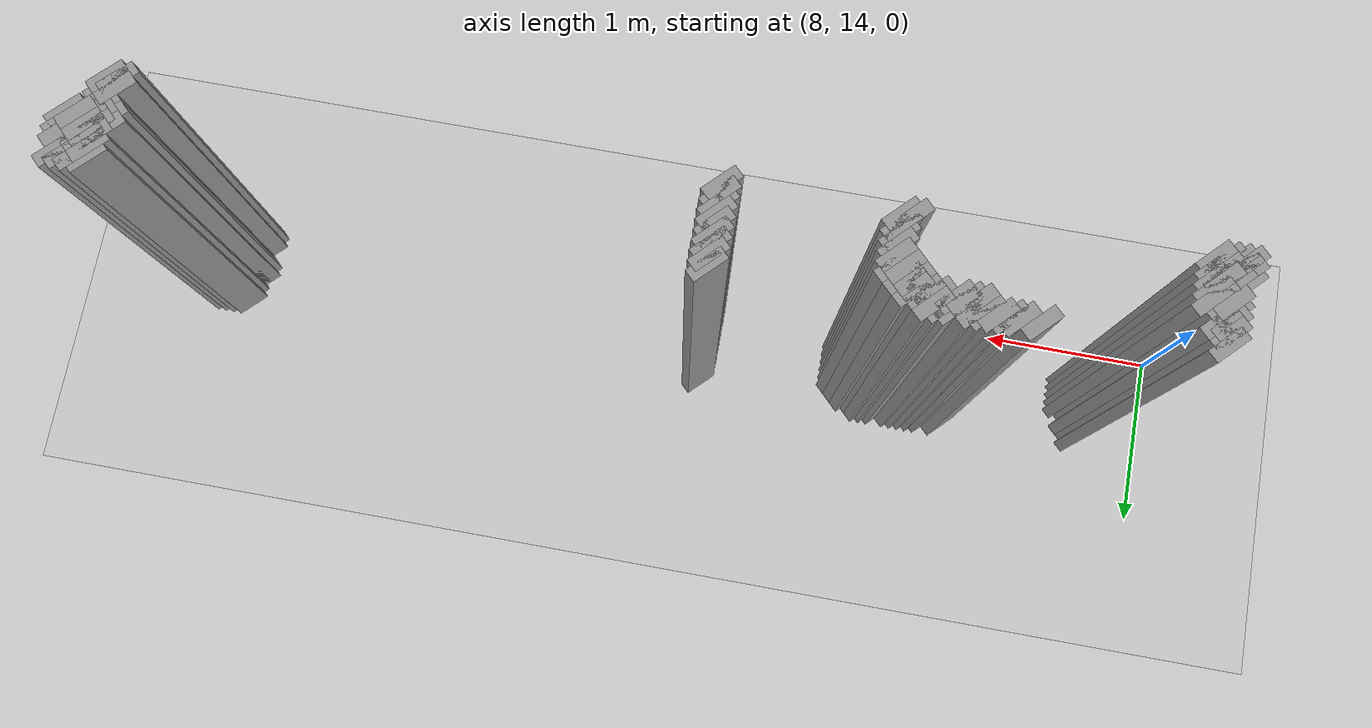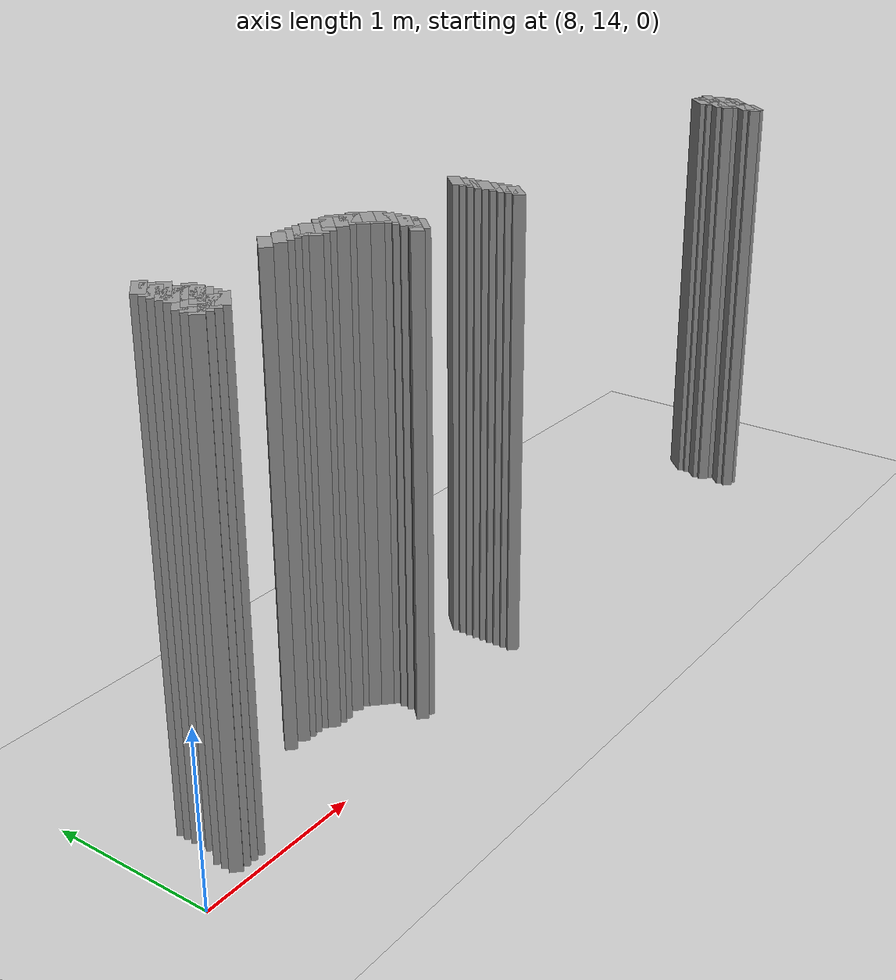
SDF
<sdf version="1.5">
 <world name="default">
  <include><uri>model://ground_plane</uri></include>
  <include><uri>model://sun</uri></include>
  <model name="grey_wall_623">
   <static>1</static>
   <link name="link">
    <pose>9.25 14.6  1.4 0 0 -0.785398163397</pose>
    <collision name="collision"><geometry><box><size>0.0707106781187 .2  2.8</size></box></geometry></collision>
    <visual name="visual">
     <cast_shadows>0</cast_shadows>
     <geometry><box><size>0.0707106781187 .2  2.8</size></box></geometry>
     <material>
      <script>
       <uri>model://grey_wall/materials/scripts</uri>
       <uri>model://grey_wall/materials/textures</uri>
       <name>vrc/grey_wall</name>
      </script>
     </material>
    </visual>
   </link>
  </model>
  <model name="grey_wall_624">
   <static>1</static>
   <link name="link">
    <pose>9.35 14.6  1.4 0 0 -0.785398163397</pose>
    <collision name="collision"><geometry><box><size>0.0707106781187 .2  2.8</size></box></geometry></collision>
    <visual name="visual">
     <cast_shadows>0</cast_shadows>
     <geometry><box><size>0.0707106781187 .2  2.8</size></box></geometry>
     <material>
      <script>
       <uri>model://grey_wall/materials/scripts</uri>
       <uri>model://grey_wall/materials/textures</uri>
       <name>vrc/grey_wall</name>
      </script>
     </material>
    </visual>
   </link>
  </model>
  <model name="grey_wall_625">
   <static>1</static>
   <link name="link">
    <pose>9.4 14.6  1.4 0 0 -0.785398163397</pose>
    <collision name="collision"><geometry><box><size>0.0707106781187 .2  2.8</size></box></geometry></collision>
    <visual name="visual">
     <cast_shadows>0</cast_shadows>
     <geometry><box><size>0.0707106781187 .2  2.8</size></box></geometry>
     <material>
      <script>
       <uri>model://grey_wall/materials/scripts</uri>
       <uri>model://grey_wall/materials/textures</uri>
       <name>vrc/grey_wall</name>
      </script>
     </material>
    </visual>
   </link>
  </model>
  <model name="grey_wall_626">
   <static>1</static>
   <link name="link">
    <pose>9.45 14.6  1.4 0 0 -0.785398163397</pose>
    <collision name="collision"><geometry><box><size>0.0707106781187 .2  2.8</size></box></geometry></collision>
    <visual name="visual">
     <cast_shadows>0</cast_shadows>
     <geometry><box><size>0.0707106781187 .2  2.8</size></box></geometry>
     <material>
      <script>
       <uri>model://grey_wall/materials/scripts</uri>
       <uri>model://grey_wall/materials/textures</uri>
       <name>vrc/grey_wall</name>
      </script>
     </material>
    </visual>
   </link>
  </model>
  <model name="grey_wall_627">
   <static>1</static>
   <link name="link">
    <pose>9.5 14.6  1.4 0 0 -0.785398163397</pose>
    <collision name="collision"><geometry><box><size>0.0707106781187 .2  2.8</size></box></geometry></collision>
    <visual name="visual">
     <cast_shadows>0</cast_shadows>
     <geometry><box><size>0.0707106781187 .2  2.8</size></box></geometry>
     <material>
      <script>
       <uri>model://grey_wall/materials/scripts</uri>
       <uri>model://grey_wall/materials/textures</uri>
       <name>vrc/grey_wall</name>
      </script>
     </material>
    </visual>
   </link>
  </model>
  <model name="grey_wall_628">
   <static>1</static>
   <link name="link">
    <pose>9.55 14.6  1.4 0 0 -0.785398163397</pose>
    <collision name="collision"><geometry><box><size>0.0707106781187 .2  2.8</size></box></geometry></collision>
    <visual name="visual">
     <cast_shadows>0</cast_shadows>
     <geometry><box><size>0.0707106781187 .2  2.8</size></box></geometry>
     <material>
      <script>
       <uri>model://grey_wall/materials/scripts</uri>
       <uri>model://grey_wall/materials/textures</uri>
       <name>vrc/grey_wall</name>
      </script>
     </material>
    </visual>
   </link>
  </model>
  <model name="grey_wall_629">
   <static>1</static>
   <link name="link">
    <pose>9.65 14.6  1.4 0 0 -0.785398163397</pose>
    <collision name="collision"><geometry><box><size>0.0707106781187 .2  2.8</size></box></geometry></collision>
    <visual name="visual">
     <cast_shadows>0</cast_shadows>
     <geometry><box><size>0.0707106781187 .2  2.8</size></box></geometry>
     <material>
      <script>
       <uri>model://grey_wall/materials/scripts</uri>
       <uri>model://grey_wall/materials/textures</uri>
       <name>vrc/grey_wall</name>
      </script>
     </material>
    </visual>
   </link>
  </model>
  <model name="grey_wall_630">
   <static>1</static>
   <link name="link">
    <pose>9.7 14.6  1.4 0 0 -0.785398163397</pose>
    <collision name="collision"><geometry><box><size>0.0707106781187 .2  2.8</size></box></geometry></collision>
    <visual name="visual">
     <cast_shadows>0</cast_shadows>
     <geometry><box><size>0.0707106781187 .2  2.8</size></box></geometry>
     <material>
      <script>
       <uri>model://grey_wall/materials/scripts</uri>
       <uri>model://grey_wall/materials/textures</uri>
       <name>vrc/grey_wall</name>
      </script>
     </material>
    </visual>
   </link>
  </model>
  <model name="grey_wall_631">
   <static>1</static>
   <link name="link">
    <pose>9.75 14.6  1.4 0 0 -0.785398163397</pose>
    <collision name="collision"><geometry><box><size>0.0707106781187 .2  2.8</size></box></geometry></collision>
    <visual name="visual">
     <cast_shadows>0</cast_shadows>
     <geometry><box><size>0.0707106781187 .2  2.8</size></box></geometry>
     <material>
      <script>
       <uri>model://grey_wall/materials/scripts</uri>
       <uri>model://grey_wall/materials/textures</uri>
       <name>vrc/grey_wall</name>
      </script>
     </material>
    </visual>
   </link>
  </model>
  <model name="grey_wall_632">
   <static>1</static>
   <link name="link">
    <pose>10.8 14.6  1.4 0 0 -0.785398163397</pose>
    <collision name="collision"><geometry><box><size>0.0707106781187 .2  2.8</size></box></geometry></collision>
    <visual name="visual">
     <cast_shadows>0</cast_shadows>
     <geometry><box><size>0.0707106781187 .2  2.8</size></box></geometry>
     <material>
      <script>
       <uri>model://grey_wall/materials/scripts</uri>
       <uri>model://grey_wall/materials/textures</uri>
       <name>vrc/grey_wall</name>
      </script>
     </material>
    </visual>
   </link>
  </model>
  <model name="grey_wall_633">
   <static>1</static>
   <link name="link">
    <pose>13.75 14.6  1.4 0 0 -0.785398163397</pose>
    <collision name="collision"><geometry><box><size>0.0707106781187 .2  2.8</size></box></geometry></collision>
    <visual name="visual">
     <cast_shadows>0</cast_shadows>
     <geometry><box><size>0.0707106781187 .2  2.8</size></box></geometry>
     <material>
      <script>
       <uri>model://grey_wall/materials/scripts</uri>
       <uri>model://grey_wall/materials/textures</uri>
       <name>vrc/grey_wall</name>
      </script>
     </material>
    </visual>
   </link>
  </model>
  <model name="grey_wall_634">
   <static>1</static>
   <link name="link">
    <pose>13.8 14.6  1.4 0 0 -0.785398163397</pose>
    <collision name="collision"><geometry><box><size>0.0707106781187 .2  2.8</size></box></geometry></collision>
    <visual name="visual">
     <cast_shadows>0</cast_shadows>
     <geometry><box><size>0.0707106781187 .2  2.8</size></box></geometry>
     <material>
      <script>
       <uri>model://grey_wall/materials/scripts</uri>
       <uri>model://grey_wall/materials/textures</uri>
       <name>vrc/grey_wall</name>
      </script>
     </material>
    </visual>
   </link>
  </model>
  <model name="grey_wall_635">
   <static>1</static>
   <link name="link">
    <pose>13.85 14.6  1.4 0 0 -0.785398163397</pose>
    <collision name="collision"><geometry><box><size>0.0707106781187 .2  2.8</size></box></geometry></collision>
    <visual name="visual">
     <cast_shadows>0</cast_shadows>
     <geometry><box><size>0.0707106781187 .2  2.8</size></box></geometry>
     <material>
      <script>
       <uri>model://grey_wall/materials/scripts</uri>
       <uri>model://grey_wall/materials/textures</uri>
       <name>vrc/grey_wall</name>
      </script>
     </material>
    </visual>
   </link>
  </model>
  <model name="grey_wall_636">
   <static>1</static>
   <link name="link">
    <pose>13.9 14.6  1.4 0 0 -0.785398163397</pose>
    <collision name="collision"><geometry><box><size>0.0707106781187 .2  2.8</size></box></geometry></collision>
    <visual name="visual">
     <cast_shadows>0</cast_shadows>
     <geometry><box><size>0.0707106781187 .2  2.8</size></box></geometry>
     <material>
      <script>
       <uri>model://grey_wall/materials/scripts</uri>
       <uri>model://grey_wall/materials/textures</uri>
       <name>vrc/grey_wall</name>
      </script>
     </material>
    </visual>
   </link>
  </model>
  <model name="grey_wall_637">
   <static>1</static>
   <link name="link">
    <pose>8.4 14.55  1.4 0 0 -0.785398163397</pose>
    <collision name="collision"><geometry><box><size>0.0707106781187 .2  2.8</size></box></geometry></collision>
    <visual name="visual">
     <cast_shadows>0</cast_shadows>
     <geometry><box><size>0.0707106781187 .2  2.8</size></box></geometry>
     <material>
      <script>
       <uri>model://grey_wall/materials/scripts</uri>
       <uri>model://grey_wall/materials/textures</uri>
       <name>vrc/grey_wall</name>
      </script>
     </material>
    </visual>
   </link>
  </model>
  <model name="grey_wall_638">
   <static>1</static>
   <link name="link">
    <pose>9.55 14.55  1.4 0 0 -0.785398163397</pose>
    <collision name="collision"><geometry><box><size>0.0707106781187 .2  2.8</size></box></geometry></collision>
    <visual name="visual">
     <cast_shadows>0</cast_shadows>
     <geometry><box><size>0.0707106781187 .2  2.8</size></box></geometry>
     <material>
      <script>
       <uri>model://grey_wall/materials/scripts</uri>
       <uri>model://grey_wall/materials/textures</uri>
       <name>vrc/grey_wall</name>
      </script>
     </material>
    </visual>
   </link>
  </model>
  <model name="grey_wall_639">
   <static>1</static>
   <link name="link">
    <pose>9.6 14.55  1.4 0 0 -0.785398163397</pose>
    <collision name="collision"><geometry><box><size>0.0707106781187 .2  2.8</size></box></geometry></collision>
    <visual name="visual">
     <cast_shadows>0</cast_shadows>
     <geometry><box><size>0.0707106781187 .2  2.8</size></box></geometry>
     <material>
      <script>
       <uri>model://grey_wall/materials/scripts</uri>
       <uri>model://grey_wall/materials/textures</uri>
       <name>vrc/grey_wall</name>
      </script>
     </material>
    </visual>
   </link>
  </model>
  <model name="grey_wall_640">
   <static>1</static>
   <link name="link">
    <pose>9.65 14.55  1.4 0 0 -0.785398163397</pose>
    <collision name="collision"><geometry><box><size>0.0707106781187 .2  2.8</size></box></geometry></collision>
    <visual name="visual">
     <cast_shadows>0</cast_shadows>
     <geometry><box><size>0.0707106781187 .2  2.8</size></box></geometry>
     <material>
      <script>
       <uri>model://grey_wall/materials/scripts</uri>
       <uri>model://grey_wall/materials/textures</uri>
       <name>vrc/grey_wall</name>
      </script>
     </material>
    </visual>
   </link>
  </model>
  <model name="grey_wall_641">
   <static>1</static>
   <link name="link">
    <pose>9.75 14.55  1.4 0 0 -0.785398163397</pose>
    <collision name="collision"><geometry><box><size>0.0707106781187 .2  2.8</size></box></geometry></collision>
    <visual name="visual">
     <cast_shadows>0</cast_shadows>
     <geometry><box><size>0.0707106781187 .2  2.8</size></box></geometry>
     <material>
      <script>
       <uri>model://grey_wall/materials/scripts</uri>
       <uri>model://grey_wall/materials/textures</uri>
       <name>vrc/grey_wall</name>
      </script>
     </material>
    </visual>
   </link>
  </model>
  <model name="grey_wall_642">
   <static>1</static>
   <link name="link">
    <pose>9.8 14.55  1.4 0 0 -0.785398163397</pose>
    <collision name="collision"><geometry><box><size>0.0707106781187 .2  2.8</size></box></geometry></collision>
    <visual name="visual">
     <cast_shadows>0</cast_shadows>
     <geometry><box><size>0.0707106781187 .2  2.8</size></box></geometry>
     <material>
      <script>
       <uri>model://grey_wall/materials/scripts</uri>
       <uri>model://grey_wall/materials/textures</uri>
       <name>vrc/grey_wall</name>
      </script>
     </material>
    </visual>
   </link>
  </model>
  <model name="grey_wall_643">
   <static>1</static>
   <link name="link">
    <pose>9.85 14.55  1.4 0 0 -0.785398163397</pose>
    <collision name="collision"><geometry><box><size>0.0707106781187 .2  2.8</size></box></geometry></collision>
    <visual name="visual">
     <cast_shadows>0</cast_shadows>
     <geometry><box><size>0.0707106781187 .2  2.8</size></box></geometry>
     <material>
      <script>
       <uri>model://grey_wall/materials/scripts</uri>
       <uri>model://grey_wall/materials/textures</uri>
       <name>vrc/grey_wall</name>
      </script>
     </material>
    </visual>
   </link>
  </model>
  <model name="grey_wall_644">
   <static>1</static>
   <link name="link">
    <pose>10.8 14.55  1.4 0 0 -0.785398163397</pose>
    <collision name="collision"><geometry><box><size>0.0707106781187 .2  2.8</size></box></geometry></collision>
    <visual name="visual">
     <cast_shadows>0</cast_shadows>
     <geometry><box><size>0.0707106781187 .2  2.8</size></box></geometry>
     <material>
      <script>
       <uri>model://grey_wall/materials/scripts</uri>
       <uri>model://grey_wall/materials/textures</uri>
       <name>vrc/grey_wall</name>
      </script>
     </material>
    </visual>
   </link>
  </model>
  <model name="grey_wall_645">
   <static>1</static>
   <link name="link">
    <pose>13.75 14.55  1.4 0 0 -0.785398163397</pose>
    <collision name="collision"><geometry><box><size>0.0707106781187 .2  2.8</size></box></geometry></collision>
    <visual name="visual">
     <cast_shadows>0</cast_shadows>
     <geometry><box><size>0.0707106781187 .2  2.8</size></box></geometry>
     <material>
      <script>
       <uri>model://grey_wall/materials/scripts</uri>
       <uri>model://grey_wall/materials/textures</uri>
       <name>vrc/grey_wall</name>
      </script>
     </material>
    </visual>
   </link>
  </model>
  <model name="grey_wall_646">
   <static>1</static>
   <link name="link">
    <pose>8.4 14.5  1.4 0 0 -0.785398163397</pose>
    <collision name="collision"><geometry><box><size>0.0707106781187 .2  2.8</size></box></geometry></collision>
    <visual name="visual">
     <cast_shadows>0</cast_shadows>
     <geometry><box><size>0.0707106781187 .2  2.8</size></box></geometry>
     <material>
      <script>
       <uri>model://grey_wall/materials/scripts</uri>
       <uri>model://grey_wall/materials/textures</uri>
       <name>vrc/grey_wall</name>
      </script>
     </material>
    </visual>
   </link>
  </model>
  <model name="grey_wall_647">
   <static>1</static>
   <link name="link">
    <pose>9.85 14.5  1.4 0 0 -0.785398163397</pose>
    <collision name="collision"><geometry><box><size>0.0707106781187 .2  2.8</size></box></geometry></collision>
    <visual name="visual">
     <cast_shadows>0</cast_shadows>
     <geometry><box><size>0.0707106781187 .2  2.8</size></box></geometry>
     <material>
      <script>
       <uri>model://grey_wall/materials/scripts</uri>
       <uri>model://grey_wall/materials/textures</uri>
       <name>vrc/grey_wall</name>
      </script>
     </material>
    </visual>
   </link>
  </model>
  <model name="grey_wall_648">
   <static>1</static>
   <link name="link">
    <pose>9.9 14.5  1.4 0 0 -0.785398163397</pose>
    <collision name="collision"><geometry><box><size>0.0707106781187 .2  2.8</size></box></geometry></collision>
    <visual name="visual">
     <cast_shadows>0</cast_shadows>
     <geometry><box><size>0.0707106781187 .2  2.8</size></box></geometry>
     <material>
      <script>
       <uri>model://grey_wall/materials/scripts</uri>
       <uri>model://grey_wall/materials/textures</uri>
       <name>vrc/grey_wall</name>
      </script>
     </material>
    </visual>
   </link>
  </model>
  <model name="grey_wall_649">
   <static>1</static>
   <link name="link">
    <pose>10.8 14.5  1.4 0 0 -0.785398163397</pose>
    <collision name="collision"><geometry><box><size>0.0707106781187 .2  2.8</size></box></geometry></collision>
    <visual name="visual">
     <cast_shadows>0</cast_shadows>
     <geometry><box><size>0.0707106781187 .2  2.8</size></box></geometry>
     <material>
      <script>
       <uri>model://grey_wall/materials/scripts</uri>
       <uri>model://grey_wall/materials/textures</uri>
       <name>vrc/grey_wall</name>
      </script>
     </material>
    </visual>
   </link>
  </model>
  <model name="grey_wall_650">
   <static>1</static>
   <link name="link">
    <pose>13.75 14.5  1.4 0 0 -0.785398163397</pose>
    <collision name="collision"><geometry><box><size>0.0707106781187 .2  2.8</size></box></geometry></collision>
    <visual name="visual">
     <cast_shadows>0</cast_shadows>
     <geometry><box><size>0.0707106781187 .2  2.8</size></box></geometry>
     <material>
      <script>
       <uri>model://grey_wall/materials/scripts</uri>
       <uri>model://grey_wall/materials/textures</uri>
       <name>vrc/grey_wall</name>
      </script>
     </material>
    </visual>
   </link>
  </model>
  <model name="grey_wall_651">
   <static>1</static>
   <link name="link">
    <pose>13.8 14.5  1.4 0 0 -0.785398163397</pose>
    <collision name="collision"><geometry><box><size>0.0707106781187 .2  2.8</size></box></geometry></collision>
    <visual name="visual">
     <cast_shadows>0</cast_shadows>
     <geometry><box><size>0.0707106781187 .2  2.8</size></box></geometry>
     <material>
      <script>
       <uri>model://grey_wall/materials/scripts</uri>
       <uri>model://grey_wall/materials/textures</uri>
       <name>vrc/grey_wall</name>
      </script>
     </material>
    </visual>
   </link>
  </model>
  <model name="grey_wall_652">
   <static>1</static>
   <link name="link">
    <pose>13.85 14.5  1.4 0 0 -0.785398163397</pose>
    <collision name="collision"><geometry><box><size>0.0707106781187 .2  2.8</size></box></geometry></collision>
    <visual name="visual">
     <cast_shadows>0</cast_shadows>
     <geometry><box><size>0.0707106781187 .2  2.8</size></box></geometry>
     <material>
      <script>
       <uri>model://grey_wall/materials/scripts</uri>
       <uri>model://grey_wall/materials/textures</uri>
       <name>vrc/grey_wall</name>
      </script>
     </material>
    </visual>
   </link>
  </model>
  <model name="grey_wall_653">
   <static>1</static>
   <link name="link">
    <pose>13.9 14.5  1.4 0 0 -0.785398163397</pose>
    <collision name="collision"><geometry><box><size>0.0707106781187 .2  2.8</size></box></geometry></collision>
    <visual name="visual">
     <cast_shadows>0</cast_shadows>
     <geometry><box><size>0.0707106781187 .2  2.8</size></box></geometry>
     <material>
      <script>
       <uri>model://grey_wall/materials/scripts</uri>
       <uri>model://grey_wall/materials/textures</uri>
       <name>vrc/grey_wall</name>
      </script>
     </material>
    </visual>
   </link>
  </model>
  <model name="grey_wall_654">
   <static>1</static>
   <link name="link">
    <pose>8.4 14.45  1.4 0 0 -0.785398163397</pose>
    <collision name="collision"><geometry><box><size>0.0707106781187 .2  2.8</size></box></geometry></collision>
    <visual name="visual">
     <cast_shadows>0</cast_shadows>
     <geometry><box><size>0.0707106781187 .2  2.8</size></box></geometry>
     <material>
      <script>
       <uri>model://grey_wall/materials/scripts</uri>
       <uri>model://grey_wall/materials/textures</uri>
       <name>vrc/grey_wall</name>
      </script>
     </material>
    </visual>
   </link>
  </model>
  <model name="grey_wall_655">
   <static>1</static>
   <link name="link">
    <pose>8.45 14.45  1.4 0 0 -0.785398163397</pose>
    <collision name="collision"><geometry><box><size>0.0707106781187 .2  2.8</size></box></geometry></collision>
    <visual name="visual">
     <cast_shadows>0</cast_shadows>
     <geometry><box><size>0.0707106781187 .2  2.8</size></box></geometry>
     <material>
      <script>
       <uri>model://grey_wall/materials/scripts</uri>
       <uri>model://grey_wall/materials/textures</uri>
       <name>vrc/grey_wall</name>
      </script>
     </material>
    </visual>
   </link>
  </model>
  <model name="grey_wall_656">
   <static>1</static>
   <link name="link">
    <pose>9.9 14.45  1.4 0 0 -0.785398163397</pose>
    <collision name="collision"><geometry><box><size>0.0707106781187 .2  2.8</size></box></geometry></collision>
    <visual name="visual">
     <cast_shadows>0</cast_shadows>
     <geometry><box><size>0.0707106781187 .2  2.8</size></box></geometry>
     <material>
      <script>
       <uri>model://grey_wall/materials/scripts</uri>
       <uri>model://grey_wall/materials/textures</uri>
       <name>vrc/grey_wall</name>
      </script>
     </material>
    </visual>
   </link>
  </model>
  <model name="grey_wall_657">
   <static>1</static>
   <link name="link">
    <pose>9.95 14.45  1.4 0 0 -0.785398163397</pose>
    <collision name="collision"><geometry><box><size>0.0707106781187 .2  2.8</size></box></geometry></collision>
    <visual name="visual">
     <cast_shadows>0</cast_shadows>
     <geometry><box><size>0.0707106781187 .2  2.8</size></box></geometry>
     <material>
      <script>
       <uri>model://grey_wall/materials/scripts</uri>
       <uri>model://grey_wall/materials/textures</uri>
       <name>vrc/grey_wall</name>
      </script>
     </material>
    </visual>
   </link>
  </model>
  <model name="grey_wall_658">
   <static>1</static>
   <link name="link">
    <pose>10.8 14.45  1.4 0 0 -0.785398163397</pose>
    <collision name="collision"><geometry><box><size>0.0707106781187 .2  2.8</size></box></geometry></collision>
    <visual name="visual">
     <cast_shadows>0</cast_shadows>
     <geometry><box><size>0.0707106781187 .2  2.8</size></box></geometry>
     <material>
      <script>
       <uri>model://grey_wall/materials/scripts</uri>
       <uri>model://grey_wall/materials/textures</uri>
       <name>vrc/grey_wall</name>
      </script>
     </material>
    </visual>
   </link>
  </model>
  <model name="grey_wall_659">
   <static>1</static>
   <link name="link">
    <pose>13.7 14.45  1.4 0 0 -0.785398163397</pose>
    <collision name="collision"><geometry><box><size>0.0707106781187 .2  2.8</size></box></geometry></collision>
    <visual name="visual">
     <cast_shadows>0</cast_shadows>
     <geometry><box><size>0.0707106781187 .2  2.8</size></box></geometry>
     <material>
      <script>
       <uri>model://grey_wall/materials/scripts</uri>
       <uri>model://grey_wall/materials/textures</uri>
       <name>vrc/grey_wall</name>
      </script>
     </material>
    </visual>
   </link>
  </model>
  <model name="grey_wall_660">
   <static>1</static>
   <link name="link">
    <pose>13.75 14.45  1.4 0 0 -0.785398163397</pose>
    <collision name="collision"><geometry><box><size>0.0707106781187 .2  2.8</size></box></geometry></collision>
    <visual name="visual">
     <cast_shadows>0</cast_shadows>
     <geometry><box><size>0.0707106781187 .2  2.8</size></box></geometry>
     <material>
      <script>
       <uri>model://grey_wall/materials/scripts</uri>
       <uri>model://grey_wall/materials/textures</uri>
       <name>vrc/grey_wall</name>
      </script>
     </material>
    </visual>
   </link>
  </model>
  <model name="grey_wall_661">
   <static>1</static>
   <link name="link">
    <pose>13.8 14.45  1.4 0 0 -0.785398163397</pose>
    <collision name="collision"><geometry><box><size>0.0707106781187 .2  2.8</size></box></geometry></collision>
    <visual name="visual">
     <cast_shadows>0</cast_shadows>
     <geometry><box><size>0.0707106781187 .2  2.8</size></box></geometry>
     <material>
      <script>
       <uri>model://grey_wall/materials/scripts</uri>
       <uri>model://grey_wall/materials/textures</uri>
       <name>vrc/grey_wall</name>
      </script>
     </material>
    </visual>
   </link>
  </model>
  <model name="grey_wall_662">
   <static>1</static>
   <link name="link">
    <pose>13.9 14.45  1.4 0 0 -0.785398163397</pose>
    <collision name="collision"><geometry><box><size>0.0707106781187 .2  2.8</size></box></geometry></collision>
    <visual name="visual">
     <cast_shadows>0</cast_shadows>
     <geometry><box><size>0.0707106781187 .2  2.8</size></box></geometry>
     <material>
      <script>
       <uri>model://grey_wall/materials/scripts</uri>
       <uri>model://grey_wall/materials/textures</uri>
       <name>vrc/grey_wall</name>
      </script>
     </material>
    </visual>
   </link>
  </model>
  <model name="grey_wall_663">
   <static>1</static>
   <link name="link">
    <pose>8.4 14.4  1.4 0 0 -0.785398163397</pose>
    <collision name="collision"><geometry><box><size>0.0707106781187 .2  2.8</size></box></geometry></collision>
    <visual name="visual">
     <cast_shadows>0</cast_shadows>
     <geometry><box><size>0.0707106781187 .2  2.8</size></box></geometry>
     <material>
      <script>
       <uri>model://grey_wall/materials/scripts</uri>
       <uri>model://grey_wall/materials/textures</uri>
       <name>vrc/grey_wall</name>
      </script>
     </material>
    </visual>
   </link>
  </model>
  <model name="grey_wall_664">
   <static>1</static>
   <link name="link">
    <pose>9.95 14.4  1.4 0 0 -0.785398163397</pose>
    <collision name="collision"><geometry><box><size>0.0707106781187 .2  2.8</size></box></geometry></collision>
    <visual name="visual">
     <cast_shadows>0</cast_shadows>
     <geometry><box><size>0.0707106781187 .2  2.8</size></box></geometry>
     <material>
      <script>
       <uri>model://grey_wall/materials/scripts</uri>
       <uri>model://grey_wall/materials/textures</uri>
       <name>vrc/grey_wall</name>
      </script>
     </material>
    </visual>
   </link>
  </model>
  <model name="grey_wall_665">
   <static>1</static>
   <link name="link">
    <pose>10.8 14.4  1.4 0 0 -0.785398163397</pose>
    <collision name="collision"><geometry><box><size>0.0707106781187 .2  2.8</size></box></geometry></collision>
    <visual name="visual">
     <cast_shadows>0</cast_shadows>
     <geometry><box><size>0.0707106781187 .2  2.8</size></box></geometry>
     <material>
      <script>
       <uri>model://grey_wall/materials/scripts</uri>
       <uri>model://grey_wall/materials/textures</uri>
       <name>vrc/grey_wall</name>
      </script>
     </material>
    </visual>
   </link>
  </model>
  <model name="grey_wall_666">
   <static>1</static>
   <link name="link">
    <pose>13.7 14.4  1.4 0 0 -0.785398163397</pose>
    <collision name="collision"><geometry><box><size>0.0707106781187 .2  2.8</size></box></geometry></collision>
    <visual name="visual">
     <cast_shadows>0</cast_shadows>
     <geometry><box><size>0.0707106781187 .2  2.8</size></box></geometry>
     <material>
      <script>
       <uri>model://grey_wall/materials/scripts</uri>
       <uri>model://grey_wall/materials/textures</uri>
       <name>vrc/grey_wall</name>
      </script>
     </material>
    </visual>
   </link>
  </model>
  <model name="grey_wall_667">
   <static>1</static>
   <link name="link">
    <pose>13.75 14.4  1.4 0 0 -0.785398163397</pose>
    <collision name="collision"><geometry><box><size>0.0707106781187 .2  2.8</size></box></geometry></collision>
    <visual name="visual">
     <cast_shadows>0</cast_shadows>
     <geometry><box><size>0.0707106781187 .2  2.8</size></box></geometry>
     <material>
      <script>
       <uri>model://grey_wall/materials/scripts</uri>
       <uri>model://grey_wall/materials/textures</uri>
       <name>vrc/grey_wall</name>
      </script>
     </material>
    </visual>
   </link>
  </model>
  <model name="grey_wall_668">
   <static>1</static>
   <link name="link">
    <pose>13.8 14.4  1.4 0 0 -0.785398163397</pose>
    <collision name="collision"><geometry><box><size>0.0707106781187 .2  2.8</size></box></geometry></collision>
    <visual name="visual">
     <cast_shadows>0</cast_shadows>
     <geometry><box><size>0.0707106781187 .2  2.8</size></box></geometry>
     <material>
      <script>
       <uri>model://grey_wall/materials/scripts</uri>
       <uri>model://grey_wall/materials/textures</uri>
       <name>vrc/grey_wall</name>
      </script>
     </material>
    </visual>
   </link>
  </model>
  <model name="grey_wall_669">
   <static>1</static>
   <link name="link">
    <pose>13.85 14.4  1.4 0 0 -0.785398163397</pose>
    <collision name="collision"><geometry><box><size>0.0707106781187 .2  2.8</size></box></geometry></collision>
    <visual name="visual">
     <cast_shadows>0</cast_shadows>
     <geometry><box><size>0.0707106781187 .2  2.8</size></box></geometry>
     <material>
      <script>
       <uri>model://grey_wall/materials/scripts</uri>
       <uri>model://grey_wall/materials/textures</uri>
       <name>vrc/grey_wall</name>
      </script>
     </material>
    </visual>
   </link>
  </model>
  <model name="grey_wall_670">
   <static>1</static>
   <link name="link">
    <pose>13.9 14.4  1.4 0 0 -0.785398163397</pose>
    <collision name="collision"><geometry><box><size>0.0707106781187 .2  2.8</size></box></geometry></collision>
    <visual name="visual">
     <cast_shadows>0</cast_shadows>
     <geometry><box><size>0.0707106781187 .2  2.8</size></box></geometry>
     <material>
      <script>
       <uri>model://grey_wall/materials/scripts</uri>
       <uri>model://grey_wall/materials/textures</uri>
       <name>vrc/grey_wall</name>
      </script>
     </material>
    </visual>
   </link>
  </model>
  <model name="grey_wall_671">
   <static>1</static>
   <link name="link">
    <pose>8.4 14.35  1.4 0 0 -0.785398163397</pose>
    <collision name="collision"><geometry><box><size>0.0707106781187 .2  2.8</size></box></geometry></collision>
    <visual name="visual">
     <cast_shadows>0</cast_shadows>
     <geometry><box><size>0.0707106781187 .2  2.8</size></box></geometry>
     <material>
      <script>
       <uri>model://grey_wall/materials/scripts</uri>
       <uri>model://grey_wall/materials/textures</uri>
       <name>vrc/grey_wall</name>
      </script>
     </material>
    </visual>
   </link>
  </model>
  <model name="grey_wall_672">
   <static>1</static>
   <link name="link">
    <pose>8.45 14.35  1.4 0 0 -0.785398163397</pose>
    <collision name="collision"><geometry><box><size>0.0707106781187 .2  2.8</size></box></geometry></collision>
    <visual name="visual">
     <cast_shadows>0</cast_shadows>
     <geometry><box><size>0.0707106781187 .2  2.8</size></box></geometry>
     <material>
      <script>
       <uri>model://grey_wall/materials/scripts</uri>
       <uri>model://grey_wall/materials/textures</uri>
       <name>vrc/grey_wall</name>
      </script>
     </material>
    </visual>
   </link>
  </model>
  <model name="grey_wall_673">
   <static>1</static>
   <link name="link">
    <pose>8.5 14.35  1.4 0 0 -0.785398163397</pose>
    <collision name="collision"><geometry><box><size>0.0707106781187 .2  2.8</size></box></geometry></collision>
    <visual name="visual">
     <cast_shadows>0</cast_shadows>
     <geometry><box><size>0.0707106781187 .2  2.8</size></box></geometry>
     <material>
      <script>
       <uri>model://grey_wall/materials/scripts</uri>
       <uri>model://grey_wall/materials/textures</uri>
       <name>vrc/grey_wall</name>
      </script>
     </material>
    </visual>
   </link>
  </model>
  <model name="grey_wall_674">
   <static>1</static>
   <link name="link">
    <pose>9.95 14.35  1.4 0 0 -0.785398163397</pose>
    <collision name="collision"><geometry><box><size>0.0707106781187 .2  2.8</size></box></geometry></collision>
    <visual name="visual">
     <cast_shadows>0</cast_shadows>
     <geometry><box><size>0.0707106781187 .2  2.8</size></box></geometry>
     <material>
      <script>
       <uri>model://grey_wall/materials/scripts</uri>
       <uri>model://grey_wall/materials/textures</uri>
       <name>vrc/grey_wall</name>
      </script>
     </material>
    </visual>
   </link>
  </model>
  <model name="grey_wall_675">
   <static>1</static>
   <link name="link">
    <pose>10.8 14.35  1.4 0 0 -0.785398163397</pose>
    <collision name="collision"><geometry><box><size>0.0707106781187 .2  2.8</size></box></geometry></collision>
    <visual name="visual">
     <cast_shadows>0</cast_shadows>
     <geometry><box><size>0.0707106781187 .2  2.8</size></box></geometry>
     <material>
      <script>
       <uri>model://grey_wall/materials/scripts</uri>
       <uri>model://grey_wall/materials/textures</uri>
       <name>vrc/grey_wall</name>
      </script>
     </material>
    </visual>
   </link>
  </model>
  <model name="grey_wall_676">
   <static>1</static>
   <link name="link">
    <pose>13.75 14.35  1.4 0 0 -0.785398163397</pose>
    <collision name="collision"><geometry><box><size>0.0707106781187 .2  2.8</size></box></geometry></collision>
    <visual name="visual">
     <cast_shadows>0</cast_shadows>
     <geometry><box><size>0.0707106781187 .2  2.8</size></box></geometry>
     <material>
      <script>
       <uri>model://grey_wall/materials/scripts</uri>
       <uri>model://grey_wall/materials/textures</uri>
       <name>vrc/grey_wall</name>
      </script>
     </material>
    </visual>
   </link>
  </model>
  <model name="grey_wall_677">
   <static>1</static>
   <link name="link">
    <pose>8.5 14.3  1.4 0 0 -0.785398163397</pose>
    <collision name="collision"><geometry><box><size>0.0707106781187 .2  2.8</size></box></geometry></collision>
    <visual name="visual">
     <cast_shadows>0</cast_shadows>
     <geometry><box><size>0.0707106781187 .2  2.8</size></box></geometry>
     <material>
      <script>
       <uri>model://grey_wall/materials/scripts</uri>
       <uri>model://grey_wall/materials/textures</uri>
       <name>vrc/grey_wall</name>
      </script>
     </material>
    </visual>
   </link>
  </model>
  <model name="grey_wall_678">
   <static>1</static>
   <link name="link">
    <pose>9.95 14.3  1.4 0 0 -0.785398163397</pose>
    <collision name="collision"><geometry><box><size>0.0707106781187 .2  2.8</size></box></geometry></collision>
    <visual name="visual">
     <cast_shadows>0</cast_shadows>
     <geometry><box><size>0.0707106781187 .2  2.8</size></box></geometry>
     <material>
      <script>
       <uri>model://grey_wall/materials/scripts</uri>
       <uri>model://grey_wall/materials/textures</uri>
       <name>vrc/grey_wall</name>
      </script>
     </material>
    </visual>
   </link>
  </model>
  <model name="grey_wall_679">
   <static>1</static>
   <link name="link">
    <pose>10.8 14.3  1.4 0 0 -0.785398163397</pose>
    <collision name="collision"><geometry><box><size>0.0707106781187 .2  2.8</size></box></geometry></collision>
    <visual name="visual">
     <cast_shadows>0</cast_shadows>
     <geometry><box><size>0.0707106781187 .2  2.8</size></box></geometry>
     <material>
      <script>
       <uri>model://grey_wall/materials/scripts</uri>
       <uri>model://grey_wall/materials/textures</uri>
       <name>vrc/grey_wall</name>
      </script>
     </material>
    </visual>
   </link>
  </model>
  <model name="grey_wall_680">
   <static>1</static>
   <link name="link">
    <pose>13.75 14.3  1.4 0 0 -0.785398163397</pose>
    <collision name="collision"><geometry><box><size>0.0707106781187 .2  2.8</size></box></geometry></collision>
    <visual name="visual">
     <cast_shadows>0</cast_shadows>
     <geometry><box><size>0.0707106781187 .2  2.8</size></box></geometry>
     <material>
      <script>
       <uri>model://grey_wall/materials/scripts</uri>
       <uri>model://grey_wall/materials/textures</uri>
       <name>vrc/grey_wall</name>
      </script>
     </material>
    </visual>
   </link>
  </model>
  <model name="grey_wall_681">
   <static>1</static>
   <link name="link">
    <pose>8.35 14.25  1.4 0 0 -0.785398163397</pose>
    <collision name="collision"><geometry><box><size>0.0707106781187 .2  2.8</size></box></geometry></collision>
    <visual name="visual">
     <cast_shadows>0</cast_shadows>
     <geometry><box><size>0.0707106781187 .2  2.8</size></box></geometry>
     <material>
      <script>
       <uri>model://grey_wall/materials/scripts</uri>
       <uri>model://grey_wall/materials/textures</uri>
       <name>vrc/grey_wall</name>
      </script>
     </material>
    </visual>
   </link>
  </model>
  <model name="grey_wall_682">
   <static>1</static>
   <link name="link">
    <pose>8.4 14.25  1.4 0 0 -0.785398163397</pose>
    <collision name="collision"><geometry><box><size>0.0707106781187 .2  2.8</size></box></geometry></collision>
    <visual name="visual">
     <cast_shadows>0</cast_shadows>
     <geometry><box><size>0.0707106781187 .2  2.8</size></box></geometry>
     <material>
      <script>
       <uri>model://grey_wall/materials/scripts</uri>
       <uri>model://grey_wall/materials/textures</uri>
       <name>vrc/grey_wall</name>
      </script>
     </material>
    </visual>
   </link>
  </model>
  <model name="grey_wall_683">
   <static>1</static>
   <link name="link">
    <pose>8.45 14.25  1.4 0 0 -0.785398163397</pose>
    <collision name="collision"><geometry><box><size>0.0707106781187 .2  2.8</size></box></geometry></collision>
    <visual name="visual">
     <cast_shadows>0</cast_shadows>
     <geometry><box><size>0.0707106781187 .2  2.8</size></box></geometry>
     <material>
      <script>
       <uri>model://grey_wall/materials/scripts</uri>
       <uri>model://grey_wall/materials/textures</uri>
       <name>vrc/grey_wall</name>
      </script>
     </material>
    </visual>
   </link>
  </model>
  <model name="grey_wall_684">
   <static>1</static>
   <link name="link">
    <pose>8.5 14.25  1.4 0 0 -0.785398163397</pose>
    <collision name="collision"><geometry><box><size>0.0707106781187 .2  2.8</size></box></geometry></collision>
    <visual name="visual">
     <cast_shadows>0</cast_shadows>
     <geometry><box><size>0.0707106781187 .2  2.8</size></box></geometry>
     <material>
      <script>
       <uri>model://grey_wall/materials/scripts</uri>
       <uri>model://grey_wall/materials/textures</uri>
       <name>vrc/grey_wall</name>
      </script>
     </material>
    </visual>
   </link>
  </model>
  <model name="grey_wall_685">
   <static>1</static>
   <link name="link">
    <pose>9.95 14.25  1.4 0 0 -0.785398163397</pose>
    <collision name="collision"><geometry><box><size>0.0707106781187 .2  2.8</size></box></geometry></collision>
    <visual name="visual">
     <cast_shadows>0</cast_shadows>
     <geometry><box><size>0.0707106781187 .2  2.8</size></box></geometry>
     <material>
      <script>
       <uri>model://grey_wall/materials/scripts</uri>
       <uri>model://grey_wall/materials/textures</uri>
       <name>vrc/grey_wall</name>
      </script>
     </material>
    </visual>
   </link>
  </model>
  <model name="grey_wall_686">
   <static>1</static>
   <link name="link">
    <pose>10.8 14.25  1.4 0 0 -0.785398163397</pose>
    <collision name="collision"><geometry><box><size>0.0707106781187 .2  2.8</size></box></geometry></collision>
    <visual name="visual">
     <cast_shadows>0</cast_shadows>
     <geometry><box><size>0.0707106781187 .2  2.8</size></box></geometry>
     <material>
      <script>
       <uri>model://grey_wall/materials/scripts</uri>
       <uri>model://grey_wall/materials/textures</uri>
       <name>vrc/grey_wall</name>
      </script>
     </material>
    </visual>
   </link>
  </model>
  <model name="grey_wall_687">
   <static>1</static>
   <link name="link">
    <pose>13.7 14.25  1.4 0 0 -0.785398163397</pose>
    <collision name="collision"><geometry><box><size>0.0707106781187 .2  2.8</size></box></geometry></collision>
    <visual name="visual">
     <cast_shadows>0</cast_shadows>
     <geometry><box><size>0.0707106781187 .2  2.8</size></box></geometry>
     <material>
      <script>
       <uri>model://grey_wall/materials/scripts</uri>
       <uri>model://grey_wall/materials/textures</uri>
       <name>vrc/grey_wall</name>
      </script>
     </material>
    </visual>
   </link>
  </model>
  <model name="grey_wall_688">
   <static>1</static>
   <link name="link">
    <pose>13.75 14.25  1.4 0 0 -0.785398163397</pose>
    <collision name="collision"><geometry><box><size>0.0707106781187 .2  2.8</size></box></geometry></collision>
    <visual name="visual">
     <cast_shadows>0</cast_shadows>
     <geometry><box><size>0.0707106781187 .2  2.8</size></box></geometry>
     <material>
      <script>
       <uri>model://grey_wall/materials/scripts</uri>
       <uri>model://grey_wall/materials/textures</uri>
       <name>vrc/grey_wall</name>
      </script>
     </material>
    </visual>
   </link>
  </model>
  <model name="grey_wall_689">
   <static>1</static>
   <link name="link">
    <pose>8.35 14.2  1.4 0 0 -0.785398163397</pose>
    <collision name="collision"><geometry><box><size>0.0707106781187 .2  2.8</size></box></geometry></collision>
    <visual name="visual">
     <cast_shadows>0</cast_shadows>
     <geometry><box><size>0.0707106781187 .2  2.8</size></box></geometry>
     <material>
      <script>
       <uri>model://grey_wall/materials/scripts</uri>
       <uri>model://grey_wall/materials/textures</uri>
       <name>vrc/grey_wall</name>
      </script>
     </material>
    </visual>
   </link>
  </model>
  <model name="grey_wall_690">
   <static>1</static>
   <link name="link">
    <pose>8.45 14.2  1.4 0 0 -0.785398163397</pose>
    <collision name="collision"><geometry><box><size>0.0707106781187 .2  2.8</size></box></geometry></collision>
    <visual name="visual">
     <cast_shadows>0</cast_shadows>
     <geometry><box><size>0.0707106781187 .2  2.8</size></box></geometry>
     <material>
      <script>
       <uri>model://grey_wall/materials/scripts</uri>
       <uri>model://grey_wall/materials/textures</uri>
       <name>vrc/grey_wall</name>
      </script>
     </material>
    </visual>
   </link>
  </model>
  <model name="grey_wall_691">
   <static>1</static>
   <link name="link">
    <pose>8.5 14.2  1.4 0 0 -0.785398163397</pose>
    <collision name="collision"><geometry><box><size>0.0707106781187 .2  2.8</size></box></geometry></collision>
    <visual name="visual">
     <cast_shadows>0</cast_shadows>
     <geometry><box><size>0.0707106781187 .2  2.8</size></box></geometry>
     <material>
      <script>
       <uri>model://grey_wall/materials/scripts</uri>
       <uri>model://grey_wall/materials/textures</uri>
       <name>vrc/grey_wall</name>
      </script>
     </material>
    </visual>
   </link>
  </model>
  <model name="grey_wall_692">
   <static>1</static>
   <link name="link">
    <pose>9.9 14.2  1.4 0 0 -0.785398163397</pose>
    <collision name="collision"><geometry><box><size>0.0707106781187 .2  2.8</size></box></geometry></collision>
    <visual name="visual">
     <cast_shadows>0</cast_shadows>
     <geometry><box><size>0.0707106781187 .2  2.8</size></box></geometry>
     <material>
      <script>
       <uri>model://grey_wall/materials/scripts</uri>
       <uri>model://grey_wall/materials/textures</uri>
       <name>vrc/grey_wall</name>
      </script>
     </material>
    </visual>
   </link>
  </model>
  <model name="grey_wall_693">
   <static>1</static>
   <link name="link">
    <pose>9.95 14.2  1.4 0 0 -0.785398163397</pose>
    <collision name="collision"><geometry><box><size>0.0707106781187 .2  2.8</size></box></geometry></collision>
    <visual name="visual">
     <cast_shadows>0</cast_shadows>
     <geometry><box><size>0.0707106781187 .2  2.8</size></box></geometry>
     <material>
      <script>
       <uri>model://grey_wall/materials/scripts</uri>
       <uri>model://grey_wall/materials/textures</uri>
       <name>vrc/grey_wall</name>
      </script>
     </material>
    </visual>
   </link>
  </model>
  <model name="grey_wall_694">
   <static>1</static>
   <link name="link">
    <pose>10.8 14.2  1.4 0 0 -0.785398163397</pose>
    <collision name="collision"><geometry><box><size>0.0707106781187 .2  2.8</size></box></geometry></collision>
    <visual name="visual">
     <cast_shadows>0</cast_shadows>
     <geometry><box><size>0.0707106781187 .2  2.8</size></box></geometry>
     <material>
      <script>
       <uri>model://grey_wall/materials/scripts</uri>
       <uri>model://grey_wall/materials/textures</uri>
       <name>vrc/grey_wall</name>
      </script>
     </material>
    </visual>
   </link>
  </model>
  <model name="grey_wall_695">
   <static>1</static>
   <link name="link">
    <pose>13.7 14.2  1.4 0 0 -0.785398163397</pose>
    <collision name="collision"><geometry><box><size>0.0707106781187 .2  2.8</size></box></geometry></collision>
    <visual name="visual">
     <cast_shadows>0</cast_shadows>
     <geometry><box><size>0.0707106781187 .2  2.8</size></box></geometry>
     <material>
      <script>
       <uri>model://grey_wall/materials/scripts</uri>
       <uri>model://grey_wall/materials/textures</uri>
       <name>vrc/grey_wall</name>
      </script>
     </material>
    </visual>
   </link>
  </model>
  <model name="grey_wall_696">
   <static>1</static>
   <link name="link">
    <pose>13.75 14.2  1.4 0 0 -0.785398163397</pose>
    <collision name="collision"><geometry><box><size>0.0707106781187 .2  2.8</size></box></geometry></collision>
    <visual name="visual">
     <cast_shadows>0</cast_shadows>
     <geometry><box><size>0.0707106781187 .2  2.8</size></box></geometry>
     <material>
      <script>
       <uri>model://grey_wall/materials/scripts</uri>
       <uri>model://grey_wall/materials/textures</uri>
       <name>vrc/grey_wall</name>
      </script>
     </material>
    </visual>
   </link>
  </model>
  <model name="grey_wall_697">
   <static>1</static>
   <link name="link">
    <pose>8.35 14.15  1.4 0 0 -0.785398163397</pose>
    <collision name="collision"><geometry><box><size>0.0707106781187 .2  2.8</size></box></geometry></collision>
    <visual name="visual">
     <cast_shadows>0</cast_shadows>
     <geometry><box><size>0.0707106781187 .2  2.8</size></box></geometry>
     <material>
      <script>
       <uri>model://grey_wall/materials/scripts</uri>
       <uri>model://grey_wall/materials/textures</uri>
       <name>vrc/grey_wall</name>
      </script>
     </material>
    </visual>
   </link>
  </model>
  <model name="grey_wall_698">
   <static>1</static>
   <link name="link">
    <pose>8.4 14.15  1.4 0 0 -0.785398163397</pose>
    <collision name="collision"><geometry><box><size>0.0707106781187 .2  2.8</size></box></geometry></collision>
    <visual name="visual">
     <cast_shadows>0</cast_shadows>
     <geometry><box><size>0.0707106781187 .2  2.8</size></box></geometry>
     <material>
      <script>
       <uri>model://grey_wall/materials/scripts</uri>
       <uri>model://grey_wall/materials/textures</uri>
       <name>vrc/grey_wall</name>
      </script>
     </material>
    </visual>
   </link>
  </model>
  <model name="grey_wall_699">
   <static>1</static>
   <link name="link">
    <pose>8.45 14.15  1.4 0 0 -0.785398163397</pose>
    <collision name="collision"><geometry><box><size>0.0707106781187 .2  2.8</size></box></geometry></collision>
    <visual name="visual">
     <cast_shadows>0</cast_shadows>
     <geometry><box><size>0.0707106781187 .2  2.8</size></box></geometry>
     <material>
      <script>
       <uri>model://grey_wall/materials/scripts</uri>
       <uri>model://grey_wall/materials/textures</uri>
       <name>vrc/grey_wall</name>
      </script>
     </material>
    </visual>
   </link>
  </model>
  <model name="grey_wall_700">
   <static>1</static>
   <link name="link">
    <pose>8.5 14.15  1.4 0 0 -0.785398163397</pose>
    <collision name="collision"><geometry><box><size>0.0707106781187 .2  2.8</size></box></geometry></collision>
    <visual name="visual">
     <cast_shadows>0</cast_shadows>
     <geometry><box><size>0.0707106781187 .2  2.8</size></box></geometry>
     <material>
      <script>
       <uri>model://grey_wall/materials/scripts</uri>
       <uri>model://grey_wall/materials/textures</uri>
       <name>vrc/grey_wall</name>
      </script>
     </material>
    </visual>
   </link>
  </model>
 </world>
</sdf>
